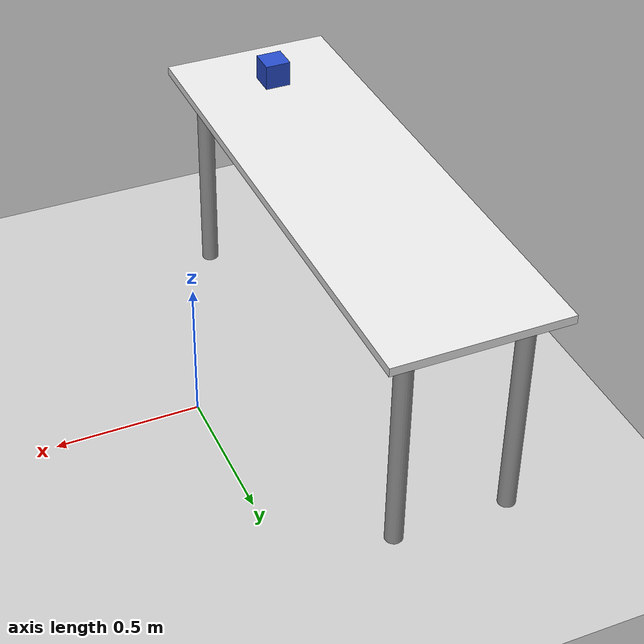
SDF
<sdf version="1.6">
 <world name="default">
  <scene><ambient>0.6 0.6 0.6 1</ambient><background>0.25 0.25 0.25 1</background><shadows>0</shadows></scene>
  <light name="sun" type="directional">
   <pose>0 0 10 0 -0 0</pose>
   <diffuse>0.8 0.8 0.8 1</diffuse>
   <specular>0.2 0.2 0.2 1</specular>
   <attenuation>
    <range>1000</range>
    <constant>0.9</constant>
    <linear>0.01</linear>
    <quadratic>0.001</quadratic>
   </attenuation>
   <direction>-0.5 0.1 -0.9</direction>
  </light>
  <model name="ground_plane">
   <static>1</static>
   <link name="link">
    <collision name="collision">
     <geometry><plane><normal>0 0 1</normal><size>100 100</size></plane></geometry>
     <surface>
      <contact><collide_bitmask>65535</collide_bitmask></contact>
      <friction><ode><mu>100</mu><mu2>50</mu2></ode></friction>
     </surface>
    </collision>
    <visual name="visual">
     <cast_shadows>0</cast_shadows>
     <geometry><plane><normal>0 0 1</normal><size>100 100</size></plane></geometry>
     <material>
      <script><uri>file://media/materials/scripts/gazebo.material</uri><name>Gazebo/Grey</name></script>
     </material>
    </visual>
   </link>
  </model>
  <gravity>0 0 -9.8</gravity>
  <physics name="default_physics" default="0" type="ode">
   <real_time_update_rate>5000</real_time_update_rate>
   <max_step_size>0.001</max_step_size>
   <real_time_factor>1</real_time_factor>
   <ode>
    <solver>
     <type>quick</type>
     <iters>150</iters>
     <precon_iters>0</precon_iters>
     <sor>1.4</sor>
     <use_dynamic_moi_rescaling>1</use_dynamic_moi_rescaling>
    </solver>
    <constraints>
     <cfm>1e-05</cfm>
     <erp>0.2</erp>
     <contact_max_correcting_vel>2000</contact_max_correcting_vel>
     <contact_surface_layer>0.01</contact_surface_layer>
    </constraints>
   </ode>
  </physics>
  <scene><ambient>0.4 0.4 0.4 1</ambient><background>0.7 0.7 0.7 1</background><shadows>1</shadows></scene>
  <magnetic_field>6e-06 2.3e-05 -4.2e-05</magnetic_field>
  <atmosphere type="adiabatic"/>
  <audio><device>default</device></audio>
  <spherical_coordinates>
   <surface_model>EARTH_WGS84</surface_model>
   <latitude_deg>0</latitude_deg>
   <longitude_deg>0</longitude_deg>
   <elevation>0</elevation>
   <heading_deg>0</heading_deg>
  </spherical_coordinates>
  <model name="table">
   <link name="link">
    <inertial>
     <inertia><ixx>0</ixx><ixy>0</ixy><ixz>0</ixz><iyy>0</iyy><iyz>0</iyz><izz>0</izz></inertia>
     <mass>0</mass>
    </inertial>
    <visual name="visual1">
     <pose>0 0 0.785 0 -0 0</pose>
     <geometry><box><size>1.8 0.6 0.03</size></box></geometry>
     <material>
      <script><uri>file://media/materials/scripts/gazebo.material</uri><name>Gazebo/White</name></script>
     </material>
    </visual>
    <visual name="back_left_leg">
     <pose>-0.8 0.2 0.3925 0 -0 0</pose>
     <geometry><cylinder><radius>0.03</radius><length>0.785</length></cylinder></geometry>
     <material>
      <script><uri>file://media/materials/scripts/gazebo.material</uri><name>Gazebo/Grey</name></script>
     </material>
    </visual>
    <visual name="front_left_leg">
     <pose>0.8 0.2 0.3925 0 -0 0</pose>
     <geometry><cylinder><radius>0.03</radius><length>0.785</length></cylinder></geometry>
     <material>
      <script><uri>file://media/materials/scripts/gazebo.material</uri><name>Gazebo/Grey</name></script>
     </material>
    </visual>
    <visual name="front_right_leg">
     <pose>0.8 -0.2 0.3925 0 -0 0</pose>
     <geometry><cylinder><radius>0.03</radius><length>0.785</length></cylinder></geometry>
     <material>
      <script><uri>file://media/materials/scripts/gazebo.material</uri><name>Gazebo/Grey</name></script>
     </material>
    </visual>
    <visual name="back_right_leg">
     <pose>-0.8 -0.2 0.3925 0 -0 0</pose>
     <geometry><cylinder><radius>0.03</radius><length>0.785</length></cylinder></geometry>
     <material>
      <script><uri>file://media/materials/scripts/gazebo.material</uri><name>Gazebo/Grey</name></script>
     </material>
    </visual>
    <collision name="surface">
     <pose>0 0 0.785 0 -0 0</pose>
     <geometry><box><size>1.8 0.6 0.03</size></box></geometry>
     <surface>
      <friction>
       <ode><mu>0.6</mu><mu2>0.6</mu2><fdir1>0 0 0</fdir1><slip1>0</slip1><slip2>0</slip2></ode>
       <torsional>
        <coefficient>1</coefficient>
        <patch_radius>0</patch_radius>
        <surface_radius>0</surface_radius>
        <use_patch_radius>1</use_patch_radius>
        <ode><slip>0</slip></ode>
       </torsional>
      </friction>
      <bounce><restitution_coefficient>0</restitution_coefficient><threshold>1e+06</threshold></bounce>
      <contact>
       <collide_without_contact>0</collide_without_contact>
       <collide_without_contact_bitmask>1</collide_without_contact_bitmask>
       <collide_bitmask>1</collide_bitmask>
       <ode>
        <soft_cfm>0</soft_cfm>
        <soft_erp>0.2</soft_erp>
        <kp>1e+13</kp>
        <kd>1</kd>
        <max_vel>0.01</max_vel>
        <min_depth>0</min_depth>
       </ode>
       <bullet>
        <split_impulse>1</split_impulse>
        <split_impulse_penetration_threshold>-0.01</split_impulse_penetration_threshold>
        <soft_cfm>0</soft_cfm>
        <soft_erp>0.2</soft_erp>
        <kp>1e+13</kp>
        <kd>1</kd>
       </bullet>
      </contact>
     </surface>
    </collision>
    <collision name="front_left_leg">
     <pose>0.8 0.38 0.5 0 -0 0</pose>
     <geometry><cylinder><radius>0.03</radius><length>0.785</length></cylinder></geometry>
     <surface>
      <friction>
       <ode><mu>1</mu><mu2>1</mu2><fdir1>0 0 0</fdir1><slip1>0</slip1><slip2>0</slip2></ode>
       <torsional>
        <coefficient>1</coefficient>
        <patch_radius>0</patch_radius>
        <surface_radius>0</surface_radius>
        <use_patch_radius>1</use_patch_radius>
        <ode><slip>0</slip></ode>
       </torsional>
      </friction>
      <bounce><restitution_coefficient>0</restitution_coefficient><threshold>1e+06</threshold></bounce>
      <contact>
       <collide_without_contact>0</collide_without_contact>
       <collide_without_contact_bitmask>1</collide_without_contact_bitmask>
       <collide_bitmask>1</collide_bitmask>
       <ode>
        <soft_cfm>0</soft_cfm>
        <soft_erp>0.2</soft_erp>
        <kp>1e+13</kp>
        <kd>1</kd>
        <max_vel>0.01</max_vel>
        <min_depth>0</min_depth>
       </ode>
       <bullet>
        <split_impulse>1</split_impulse>
        <split_impulse_penetration_threshold>-0.01</split_impulse_penetration_threshold>
        <soft_cfm>0</soft_cfm>
        <soft_erp>0.2</soft_erp>
        <kp>1e+13</kp>
        <kd>1</kd>
       </bullet>
      </contact>
     </surface>
    </collision>
    <collision name="front_right_leg">
     <pose>0.8 -0.38 0.5 0 -0 0</pose>
     <geometry><cylinder><radius>0.03</radius><length>0.785</length></cylinder></geometry>
     <surface>
      <friction>
       <ode><mu>1</mu><mu2>1</mu2><fdir1>0 0 0</fdir1><slip1>0</slip1><slip2>0</slip2></ode>
       <torsional>
        <coefficient>1</coefficient>
        <patch_radius>0</patch_radius>
        <surface_radius>0</surface_radius>
        <use_patch_radius>1</use_patch_radius>
        <ode><slip>0</slip></ode>
       </torsional>
      </friction>
      <bounce><restitution_coefficient>0</restitution_coefficient><threshold>1e+06</threshold></bounce>
      <contact>
       <collide_without_contact>0</collide_without_contact>
       <collide_without_contact_bitmask>1</collide_without_contact_bitmask>
       <collide_bitmask>1</collide_bitmask>
       <ode>
        <soft_cfm>0</soft_cfm>
        <soft_erp>0.2</soft_erp>
        <kp>1e+13</kp>
        <kd>1</kd>
        <max_vel>0.01</max_vel>
        <min_depth>0</min_depth>
       </ode>
       <bullet>
        <split_impulse>1</split_impulse>
        <split_impulse_penetration_threshold>-0.01</split_impulse_penetration_threshold>
        <soft_cfm>0</soft_cfm>
        <soft_erp>0.2</soft_erp>
        <kp>1e+13</kp>
        <kd>1</kd>
       </bullet>
      </contact>
     </surface>
    </collision>
    <collision name="back_right_leg">
     <pose>-0.8 -0.38 0.5 0 -0 0</pose>
     <geometry><cylinder><radius>0.03</radius><length>0.785</length></cylinder></geometry>
     <surface>
      <friction>
       <ode><mu>1</mu><mu2>1</mu2><fdir1>0 0 0</fdir1><slip1>0</slip1><slip2>0</slip2></ode>
       <torsional>
        <coefficient>1</coefficient>
        <patch_radius>0</patch_radius>
        <surface_radius>0</surface_radius>
        <use_patch_radius>1</use_patch_radius>
        <ode><slip>0</slip></ode>
       </torsional>
      </friction>
      <bounce><restitution_coefficient>0</restitution_coefficient><threshold>1e+06</threshold></bounce>
      <contact>
       <collide_without_contact>0</collide_without_contact>
       <collide_without_contact_bitmask>1</collide_without_contact_bitmask>
       <collide_bitmask>1</collide_bitmask>
       <ode>
        <soft_cfm>0</soft_cfm>
        <soft_erp>0.2</soft_erp>
        <kp>1e+13</kp>
        <kd>1</kd>
        <max_vel>0.01</max_vel>
        <min_depth>0</min_depth>
       </ode>
       <bullet>
        <split_impulse>1</split_impulse>
        <split_impulse_penetration_threshold>-0.01</split_impulse_penetration_threshold>
        <soft_cfm>0</soft_cfm>
        <soft_erp>0.2</soft_erp>
        <kp>1e+13</kp>
        <kd>1</kd>
       </bullet>
      </contact>
     </surface>
    </collision>
    <collision name="back_left_leg">
     <pose>-0.8 0.38 0.5 0 -0 0</pose>
     <geometry><cylinder><radius>0.03</radius><length>0.785</length></cylinder></geometry>
     <surface>
      <friction>
       <ode><mu>1</mu><mu2>1</mu2><fdir1>0 0 0</fdir1><slip1>0</slip1><slip2>0</slip2></ode>
       <torsional>
        <coefficient>1</coefficient>
        <patch_radius>0</patch_radius>
        <surface_radius>0</surface_radius>
        <use_patch_radius>1</use_patch_radius>
        <ode><slip>0</slip></ode>
       </torsional>
      </friction>
      <bounce><restitution_coefficient>0</restitution_coefficient><threshold>1e+06</threshold></bounce>
      <contact>
       <collide_without_contact>0</collide_without_contact>
       <collide_without_contact_bitmask>1</collide_without_contact_bitmask>
       <collide_bitmask>1</collide_bitmask>
       <ode>
        <soft_cfm>0</soft_cfm>
        <soft_erp>0.2</soft_erp>
        <kp>1e+13</kp>
        <kd>1</kd>
        <max_vel>0.01</max_vel>
        <min_depth>0</min_depth>
       </ode>
       <bullet>
        <split_impulse>1</split_impulse>
        <split_impulse_penetration_threshold>-0.01</split_impulse_penetration_threshold>
        <soft_cfm>0</soft_cfm>
        <soft_erp>0.2</soft_erp>
        <kp>1e+13</kp>
        <kd>1</kd>
       </bullet>
      </contact>
     </surface>
    </collision>
   </link>
   <static>1</static>
   <pose>-0.55 0 0 0 0 -1.57221</pose>
  </model>
  <model name="wood_cube_10cm">
   <link name="link">
    <inertial>
     <mass>0.5167</mass>
     <inertia>
      <ixx>0.000861167</ixx>
      <ixy>0</ixy>
      <ixz>0</ixz>
      <iyy>0.000861167</iyy>
      <iyz>0</iyz>
      <izz>0.000861167</izz>
     </inertia>
    </inertial>
    <collision name="collision">
     <geometry><box><size>0.09 0.09 0.09</size></box></geometry>
     <surface>
      <contact>
       <poissons_ratio>0.347</poissons_ratio>
       <elastic_modulus>8.8e+09</elastic_modulus>
       <ode><kp>100000</kp><kd>100</kd><max_vel>100</max_vel><min_depth>0.001</min_depth></ode>
      </contact>
      <friction>
       <torsional>
        <coefficient>1</coefficient>
        <use_patch_radius>0</use_patch_radius>
        <surface_radius>0.01</surface_radius>
       </torsional>
      </friction>
     </surface>
    </collision>
    <visual name="visual">
     <geometry><box><size>0.09 0.09 0.09</size></box></geometry>
     <material>
      <script><uri>file://media/materials/scripts/gazebo.material</uri><name>Gazebo/Blue</name></script>
     </material>
    </visual>
   </link>
   <pose>-0.56 -0.66 0.843987 3.14159 -1.57079 3.14159</pose>
  </model>
 </world>
</sdf>
